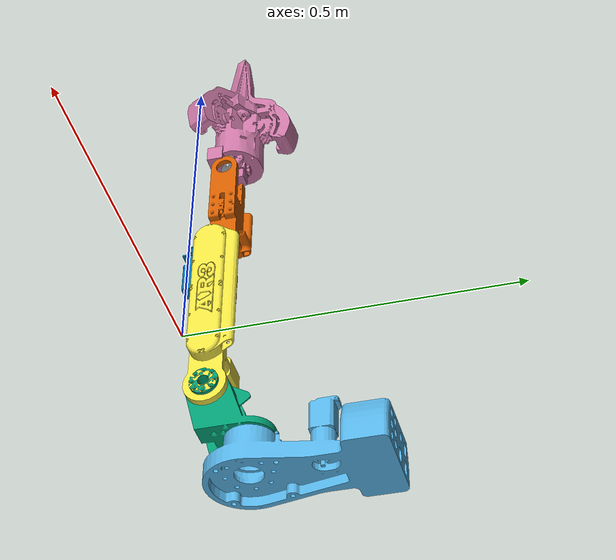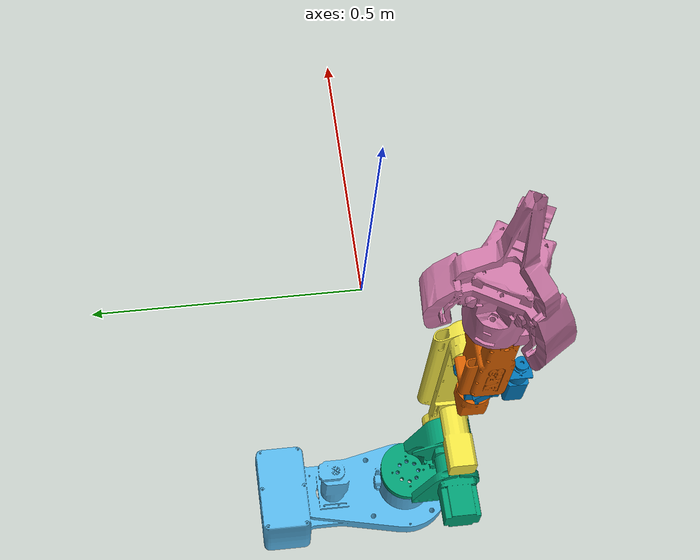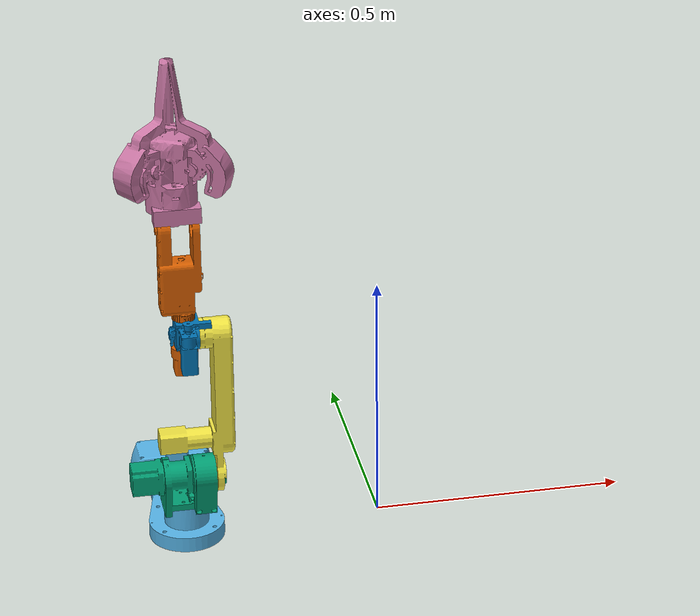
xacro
<?xml version="1.0"?>
<robot xmlns:xacro="http://www.ros.org/wiki/xacro" name="cobot0">
    <xacro:arg name="initial_positions_file" default="initial_positions.yaml" />

    <xacro:arg name="cobot0_serial_port" default="/dev/ttyCobot1" />
    <xacro:arg name="cobot0_baud_rate" default="115200" />

    <!-- Import cobot0 urdf file -->
    <xacro:include filename="$(find ar3_description)/urdf/cobot0.urdf.xacro" />

    <!-- Import control_xacro -->
    <xacro:include filename="cobot0.ros2_control.xacro" />

    <xacro:cobot0_ros2_control
        name="cobot0_system"
        initial_positions_file="$(arg initial_positions_file)"

        cobot0_serial_port="$(arg cobot0_serial_port)"
        cobot0_baud_rate="$(arg cobot0_baud_rate)"
    />

</robot>

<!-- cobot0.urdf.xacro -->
<robot name="cobot0" xmlns:xacro="http://www.ros.org/wiki/xacro">
    <xacro:include filename="$(find ar3_description)/urdf/inc/create_ar3.xacro" />

    <link name="base_link"></link>

    <xacro:create_ar3
        prefix="cobot0"
        origin_xyz="-0.39129375 -0.018 0"
        origin_rpy="0 0 ${-pi/2}"
        parent_link="base_link"
    />

</robot>

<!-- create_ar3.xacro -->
<robot xmlns:xacro="http://www.ros.org/wiki/xacro">

  <!-- Include helper macros -->
  <xacro:include filename="$(find ar3_description)/urdf/inc/create_link.xacro" />
  <xacro:include filename="$(find ar3_description)/urdf/inc/create_joint.xacro" />

  <xacro:macro name="create_ar3" params="
    prefix
    origin_xyz
    origin_rpy
    parent_link
  ">

    <!-- Base of AR3 -->
    <xacro:create_link
      link_name = "${prefix}_base"
      mesh_package = "ar3_description"
      mesh_name = "base"
    />

    <!-- Arm links -->
    <xacro:create_link
      link_name = "${prefix}_link_0"
      mesh_package = "ar3_description"
      mesh_name = "link_0"
    />
    <xacro:create_link
      link_name = "${prefix}_link_1"
      mesh_package = "ar3_description"
      mesh_name = "link_1"
    />
    <xacro:create_link
      link_name = "${prefix}_link_2"
      mesh_package = "ar3_description"
      mesh_name = "link_2"
    />
    <xacro:create_link
      link_name = "${prefix}_link_3"
      mesh_package = "ar3_description"
      mesh_name = "link_3"
    />
    <xacro:create_link
      link_name = "${prefix}_link_4"
      mesh_package = "ar3_description"
      mesh_name = "link_4"
    />
    <xacro:create_link
      link_name = "${prefix}_link_5"
      mesh_package = "ar3_description"
      mesh_name = "link_5"
    />

    <!-- Arm bias links -->
    <link name="${prefix}_link_0_bias" />
    <link name="${prefix}_link_1_bias" />
    <link name="${prefix}_link_2_bias" />
    <link name="${prefix}_link_3_bias" />
    <link name="${prefix}_link_4_bias" />
    <link name="${prefix}_link_5_bias" />

    <!-- Gripper links -->
    <xacro:create_link
      link_name = "${prefix}_link_gripper"
      mesh_package = "ar3_description"
      mesh_name = "gripper"
    />
    <link name="tof_optical_frame_id" />

    <!-- Phantom link for gripper gearbox -->
    <link name="${prefix}_link_gripper_phantom" />

    <!-- Aruco link -->
    <link name="${prefix}_eef_aruco" />

    <!-- Fixed joint between AR3 base and parent link -->
    <joint name="${prefix}_base_joint" type="fixed">
      <origin xyz="${origin_xyz}" rpy="${origin_rpy}" />
      <parent link="${parent_link}" />
      <child link="${prefix}_base" />
    </joint>

    <!-- Arm Joints -->
      <xacro:create_joint
      name = "${prefix}_joint_0"
      parent = "${prefix}_base"
      child = "${prefix}_link_0"
      bias_parent = "${prefix}_base"
      bias_child = "${prefix}_link_0_bias"
      origin = "0 0 0.0872"
      axis = "0 0 1"
      min_deg = "-120"
      max_deg = "160"
      velocity = "78"
      effort = "3.5"
    />
    <xacro:create_joint
      name = "${prefix}_joint_1"
      parent = "${prefix}_link_0"
      child = "${prefix}_link_1"
      bias_parent = "${prefix}_link_0_bias"
      bias_child = "${prefix}_link_1_bias"
      origin = "0.0642 0 0.0831"
      axis = "0 1 0"
      min_deg = "-10"
      max_deg = "80"
      velocity = "58"
      effort = "20"
    />
    <xacro:create_joint
      name = "${prefix}_joint_2"
      parent = "${prefix}_link_1"
      child = "${prefix}_link_2"
      bias_parent = "${prefix}_link_1_bias"
      bias_child = "${prefix}_link_2_bias"
      origin = "0 0 0.3050"
      axis = "0 1 0"
      min_deg = "-80"
      max_deg = "140"
      velocity = "158"
      effort = "10"
    />
    <xacro:create_joint
      name = "${prefix}_joint_3"
      parent = "${prefix}_link_2"
      child = "${prefix}_link_3"
      bias_parent = "${prefix}_link_2_bias"
      bias_child = "${prefix}_link_3_bias"
      origin = "0 0 0.0356"
      axis = "0 0 1"
      min_deg = "-95"
      max_deg = "100"
      velocity = "238"
      effort = "3"
    />
    <xacro:create_joint
      name = "${prefix}_joint_4"
      parent = "${prefix}_link_3"
      child = "${prefix}_link_4"
      bias_parent = "${prefix}_link_3_bias"
      bias_child = "${prefix}_link_4_bias"
      origin = "0 0 0.1873"
      axis = "0 1 0"
      min_deg = "-84"
      max_deg = "98"
      velocity = "198"
      effort = "0.1"
    />
    <xacro:create_joint
      name = "${prefix}_joint_5"
      parent = "${prefix}_link_4"
      child = "${prefix}_link_5"
      bias_parent = "${prefix}_link_4_bias"
      bias_child = "${prefix}_link_5_bias"
      origin = "0 0 0.0199"
      axis = "0 0 1"
      min_deg = "-164"
      max_deg = "150"
      velocity = "800"
      effort = "3"
    />

    <!-- Fixed joint between gripper and last link -->
    <joint name="${prefix}_gripper_base_joint" type="fixed">
      <origin xyz="0 0 0.016" rpy="0 0 ${-pi / 6}" />
      <parent link="${prefix}_link_5" />
      <child link="${prefix}_link_gripper" />
    </joint>

    <!-- Fixed joint between gripper and TOF optical frame -->
    <joint name="${prefix}_tof_optical_joint" type="fixed">
      <origin xyz="0 0 0.09" rpy="0 0 0" />
      <parent link="${prefix}_link_gripper" />
      <child link="tof_optical_frame_id" />
    </joint>

    <!-- Fixed joint between link 4 and eef_aruco -->
    <joint name="${prefix}_eef_aruco_joint" type="fixed">
      <origin xyz="0 0 -0.06" rpy="0 ${pi} ${-pi / 2}" />
      <parent link="${prefix}_link_4_bias" />
      <child link="${prefix}_eef_aruco" />
    </joint>

    <!-- Gripper motor joint -->
    <xacro:create_joint
      name = "${prefix}_gripper"
      parent = "${prefix}_link_gripper"
      child = "${prefix}_link_gripper_phantom"
      bias_parent = "none"
      bias_child = "none"
      origin = "0 0 0"
      axis = "0 0 1"
      min_deg = "30"
      max_deg = "160"
      velocity = "400"
      effort = "0.5"
    />

  </xacro:macro>
</robot>

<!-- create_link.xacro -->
<!--
  Adapted from:
  https://github.com/ros-controls/ros2_control_demos/blob/07a897f2c123065f1b283966ef7b1b2e30704ded/ros2_control_demo_description/r6bot/urdf/inc/create_link.xacro
 -->

<robot xmlns:xacro="http://wiki.ros.org/xacro">

  <xacro:macro name="create_link" params="
    link_name
    mesh_package
    mesh_name
  ">
    <link name="${link_name}">
      <visual>
        <origin xyz="0 0 0" rpy="0 0 0"/>
        <geometry>
          <mesh filename="package://${mesh_package}/meshes/visual/${mesh_name}.stl"/>
        </geometry>
      </visual>
      <collision>
        <origin xyz="0 0 0" rpy="0 0 0"/>
        <geometry>
          <mesh filename="package://${mesh_package}/meshes/visual/${mesh_name}.stl"/>
        </geometry>
      </collision>
    </link>
  </xacro:macro>
</robot>

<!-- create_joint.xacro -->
<robot xmlns:xacro="http://wiki.ros.org/xacro">

  <xacro:macro name="create_joint" params="
    name
    parent
    child
    bias_parent
    bias_child
    origin
    axis
    min_deg
    max_deg
    velocity
    effort
  ">

    <joint name="${name}" type="revolute">
      <parent link="${parent}" />
      <child link="${child}" />
      <origin xyz="${origin}" rpy="0 0 0" />
      <axis xyz="${axis}" />
      <limit
        effort="${effort}"
        lower="${min_deg*pi/180}"
        upper="${max_deg*pi/180}"
        velocity="${velocity*pi/180}"
      />
    </joint>

    <xacro:unless value="${bias_parent == 'none' or bias_child == 'none'}">
      <joint name="${name}_bias" type="revolute">
        <parent link="${bias_parent}" />
        <child link="${bias_child}" />
        <origin xyz="${origin}" rpy="0 0 0" />
        <axis xyz="${axis}" />
        <limit
          effort="${effort}"
          lower="${min_deg*pi/180}"
          upper="${max_deg*pi/180}"
          velocity="${velocity*pi/180}"
        />
      </joint>
    </xacro:unless>
  </xacro:macro>
</robot>
